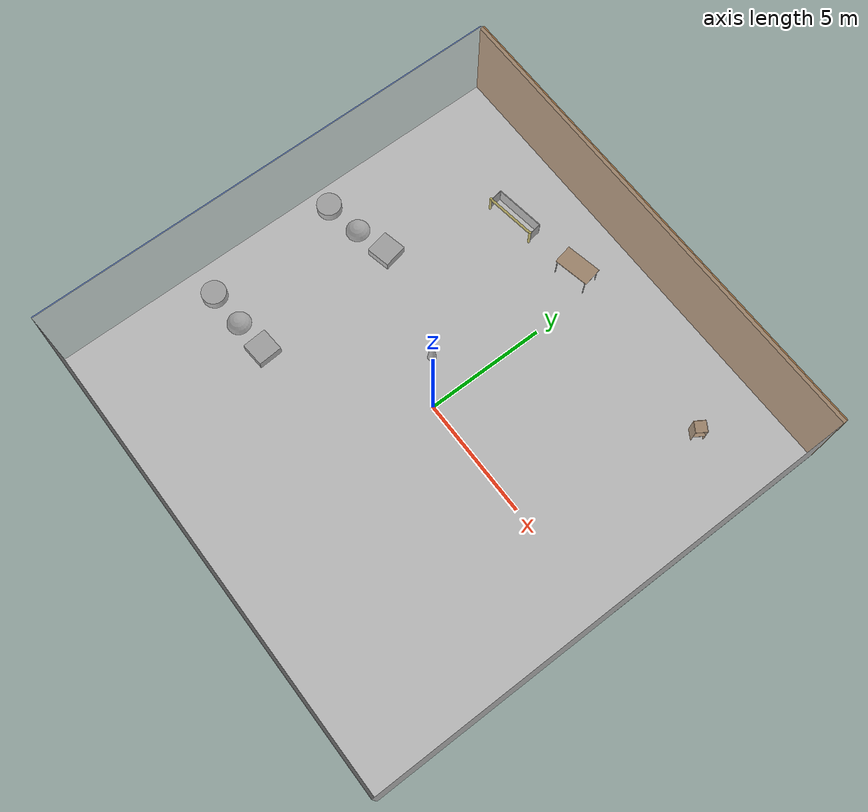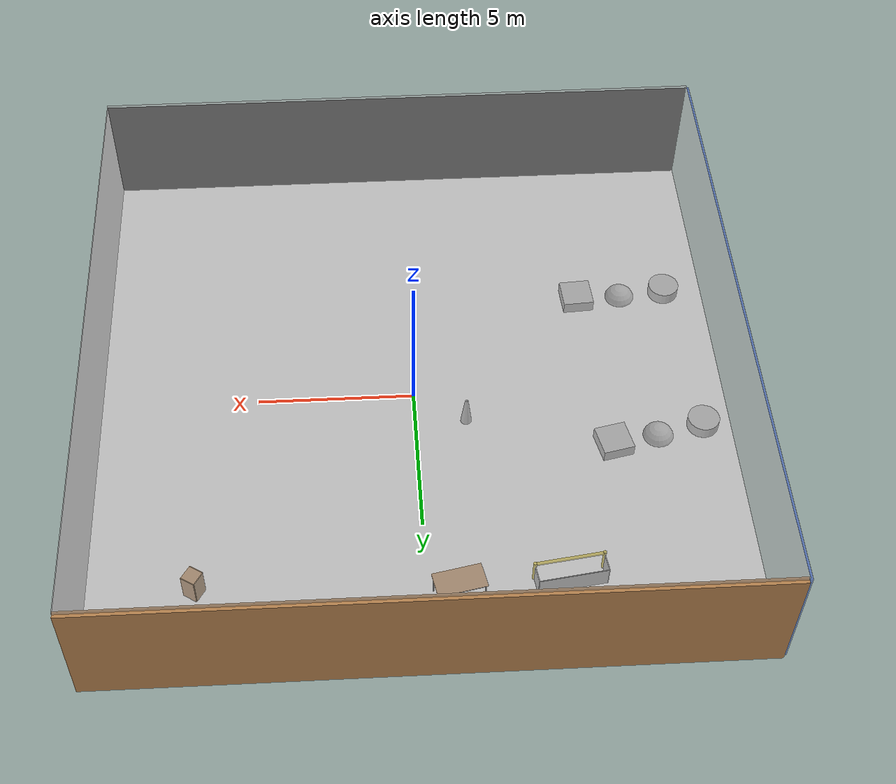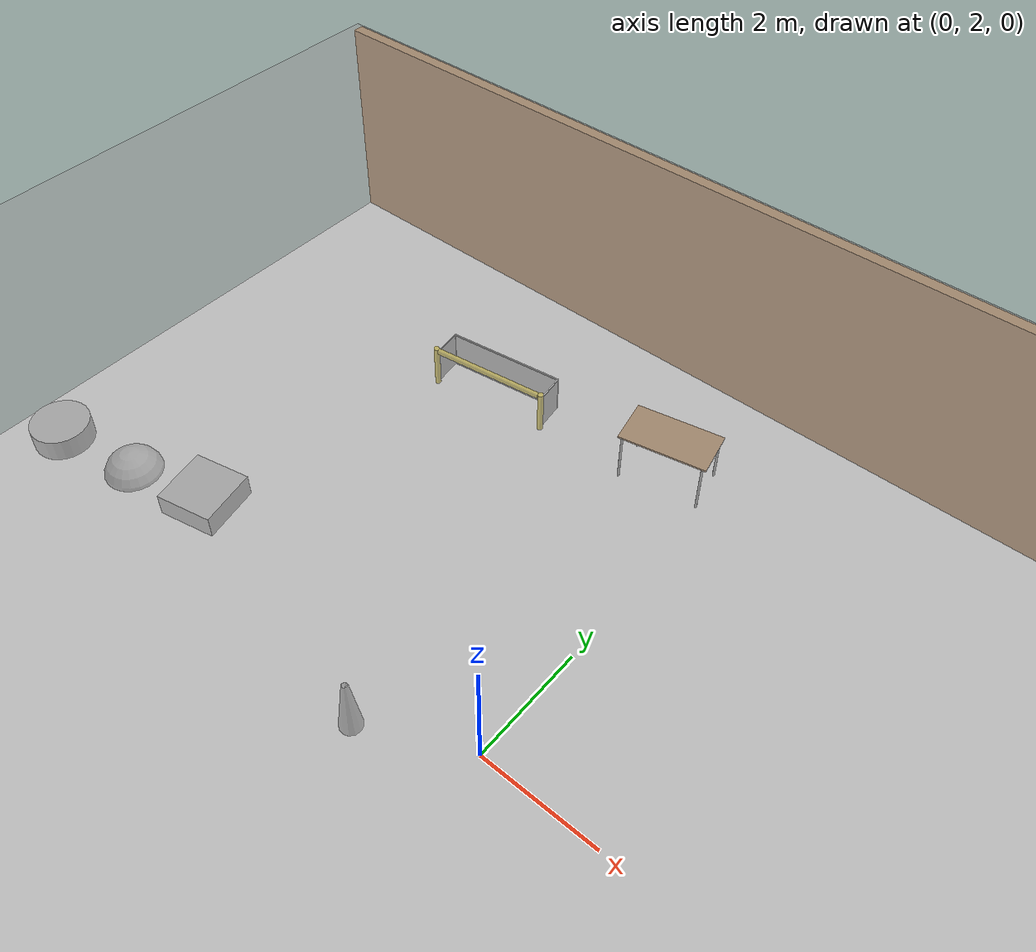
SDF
<sdf version="1.4">
 <world name="default">
  <physics type="ode">
   <max_step_size>0.001</max_step_size>
   <real_time_factor>1</real_time_factor>
   <real_time_update_rate>1000</real_time_update_rate>
   <gravity>0 0 -9.8</gravity>
  </physics>
  <scene><ambient>0.4 0.4 0.4 1</ambient><background>0.7 0.7 0.7 1</background><shadows>1</shadows></scene>
  <model name="Surrounding">
   <static>1</static>
   <link name="Ceiling">
    <collision name="Ceiling_Collision"><geometry><box><size>20 20 0.1</size></box></geometry></collision>
    <visual name="Ceiling_Visual">
     <geometry><box><size>20 20 0.1</size></box></geometry>
     <material>
      <script><uri>file://media/materials/scripts/gazebo.material</uri><name>Gazebo/GreyTransparent</name></script>
     </material>
    </visual>
    <pose>0 0 4.05 0 0 0</pose>
   </link>
   <link name="Wall_South">
    <collision name="Wall_South_Collision">
     <geometry><box><size>20 0 4</size></box></geometry>
     <pose>0 0 2 0 -0 0</pose>
    </collision>
    <visual name="Wall_South_Visual">
     <pose>0 0 2 0 -0 0</pose>
     <geometry><box><size>20 0 4</size></box></geometry>
     <material>
      <script><uri>file://media/materials/scripts/gazebo.material</uri><name>Gazebo/Black</name></script>
     </material>
    </visual>
    <velocity_decay><linear>0</linear><angular>0</angular></velocity_decay>
    <pose>0 -10 0 0 -0 0</pose>
   </link>
   <link name="Wall_East">
    <collision name="Wall_21_Collision">
     <geometry><box><size>20 0 4</size></box></geometry>
     <pose>0 0 2 0 -0 0</pose>
    </collision>
    <visual name="Wall_21_Visual">
     <pose>0 0 2 0 -0 0</pose>
     <geometry><box><size>20 0 4</size></box></geometry>
     <material>
      <script><uri>file://media/materials/scripts/gazebo.material</uri><name>Gazebo/White</name></script>
     </material>
    </visual>
    <velocity_decay><linear>0</linear><angular>0</angular></velocity_decay>
    <pose>10 0 0 0 -0 1.5708</pose>
   </link>
   <link name="Wall_North">
    <collision name="Wall_22_Collision">
     <geometry><box><size>20 0.2 4</size></box></geometry>
     <pose>0 0 2 0 -0 0</pose>
    </collision>
    <visual name="Wall_22_Visual">
     <pose>0 0 2 0 -0 0</pose>
     <geometry><box><size>20 0.2 4</size></box></geometry>
     <material>
      <script><uri>file://media/materials/scripts/gazebo.material</uri><name>Gazebo/WoodFloor</name></script>
     </material>
    </visual>
    <velocity_decay><linear>0</linear><angular>0</angular></velocity_decay>
    <pose>0 10 0 0 -0 0</pose>
   </link>
   <link name="Wall_West">
    <collision name="Wall_23_Collision">
     <geometry><box><size>20 0.2 4</size></box></geometry>
     <pose>0 0 2 0 -0 0</pose>
    </collision>
    <visual name="Wall_23_Visual">
     <pose>0 0 2 0 -0 0</pose>
     <geometry><box><size>20 0.2 4</size></box></geometry>
     <material>
      <script><uri>file://media/materials/scripts/gazebo.material</uri><name>Gazebo/BlueTransparent</name></script>
     </material>
    </visual>
    <velocity_decay><linear>0</linear><angular>0</angular></velocity_decay>
    <pose>-10 0 0 0 0 -1.5708</pose>
   </link>
   <link name="Ground_link">
    <collision name="collision">
     <pose>0 0 .05 0 -0 0</pose>
     <geometry><box><size>20 20 0.1</size></box></geometry>
    </collision>
    <visual name="visual">
     <pose>0 0 .05 0 -0 0</pose>
     <geometry><box><size>20 20 0.1</size></box></geometry>
     <material>
      <script><uri>file://media/materials/scripts/gazebo.material</uri><name>Gazebo/White</name></script>
     </material>
    </visual>
   </link>
   <static>1</static>
  </model>
  <spherical_coordinates>
   <surface_model>EARTH_WGS84</surface_model>
   <latitude_deg>0</latitude_deg>
   <longitude_deg>0</longitude_deg>
   <elevation>0</elevation>
   <heading_deg>0</heading_deg>
  </spherical_coordinates>
  <light name="lightball_0" type="diffuse">
   <diffuse>0.8 0.8 0.8 1</diffuse>
   <specular>0.2 0.2 0.2 1</specular>
   <attenuation>
    <range>100</range>
    <constant>0.7</constant>
    <linear>0.01</linear>
    <quadratic>0.001</quadratic>
   </attenuation>
   <direction>-0.5 0.1 -0.9</direction>
   <pose>3.93046916987 -3.68290920858 3.75970236813 0 0 0</pose>
  </light>
  <light name="lightball_1" type="diffuse">
   <diffuse>0.8 0.8 0.8 1</diffuse>
   <specular>0.2 0.2 0.2 1</specular>
   <attenuation>
    <range>100</range>
    <constant>0.7</constant>
    <linear>0.01</linear>
    <quadratic>0.001</quadratic>
   </attenuation>
   <direction>-0.5 0.1 -0.9</direction>
   <pose>-3.1787322189 -5.18632175499 2.11360451103 0 0 0</pose>
  </light>
  <light name="lightball_2" type="diffuse">
   <diffuse>0.8 0.8 0.8 1</diffuse>
   <specular>0.2 0.2 0.2 1</specular>
   <attenuation>
    <range>100</range>
    <constant>0.7</constant>
    <linear>0.01</linear>
    <quadratic>0.001</quadratic>
   </attenuation>
   <direction>-0.5 0.1 -0.9</direction>
   <pose>-7.37292929848 -5.41593751875 0.600889148643 0 0 0</pose>
  </light>
  <light name="lightball_3" type="diffuse">
   <diffuse>0.8 0.8 0.8 1</diffuse>
   <specular>0.2 0.2 0.2 1</specular>
   <attenuation>
    <range>100</range>
    <constant>0.7</constant>
    <linear>0.01</linear>
    <quadratic>0.001</quadratic>
   </attenuation>
   <direction>-0.5 0.1 -0.9</direction>
   <pose>-3.17500342149 -2.62125174447 2.76187420536 0 0 0</pose>
  </light>
  <light name="lightball_4" type="diffuse">
   <diffuse>0.8 0.8 0.8 1</diffuse>
   <specular>0.2 0.2 0.2 1</specular>
   <attenuation>
    <range>100</range>
    <constant>0.7</constant>
    <linear>0.01</linear>
    <quadratic>0.001</quadratic>
   </attenuation>
   <direction>-0.5 0.1 -0.9</direction>
   <pose>-0.207120446519 -9.71646077157 1.3941443192 0 0 0</pose>
  </light>
  <include>
   <uri>model://textured_shapes</uri>
   <pose>-7.19945276728 -3.87925889809 0 0 0 1.63594149616</pose>
  </include>
  <include>
   <uri>model://textured_shapes</uri>
   <pose>-7.63001106817 2.07827182287 0 0 0 1.78518198781</pose>
  </include>
  <include>
   <uri>model://robocup_3Dsim_goal</uri>
   <pose>-4.20173520655 6.99485318661 0 0 0 1.70679023811</pose>
  </include>
  <include>
   <uri>model://construction_cone</uri>
   <pose>-1.59912129404 1.16334822771 0 0 0 0.120781549791</pose>
  </include>
  <include><uri>model://table</uri><pose>-0.922383519469 7.65311427376 0 0 0 0.199102068388</pose></include>
  <include><uri>model://cabinet</uri><pose>6.79825672285 7.09570371292 0 0 0 2.58405533008</pose></include>
 </world>
</sdf>

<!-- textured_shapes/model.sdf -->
<sdf version="1.6">
  <model name="textured_shapes">
    <pose>0 0 0.5 0 0 0</pose>
    <link name="box">
      <pose>0 -1.5 0 0 0 0</pose>
      <collision name="collision">
        <geometry>
          <box>
            <size>1 1 1</size>
          </box>
        </geometry>
      </collision>
      <visual name="visual">
        <geometry>
          <box>
            <size>1 1 1</size>
          </box>
        </geometry>
        <material>
          <script>
            <uri>model://../model_source/models/textured_shapes/materials/scripts</uri>
            <uri>model://../model_source/models/textured_shapes/materials/textures</uri>
            <name>TexturedShape/Squares</name>
          </script>
        </material>
      </visual>
    </link>
    <link name="sphere">
      <collision name="collision">
        <geometry>
          <sphere>
            <radius>0.5</radius>
          </sphere>
        </geometry>
      </collision>
      <visual name="visual">
        <geometry>
          <sphere>
            <radius>0.5</radius>
          </sphere>
        </geometry>
        <material>
          <script>
            <uri>model://../model_source/models/textured_shapes/materials/scripts</uri>
            <uri>model://../model_source/models/textured_shapes/materials/textures</uri>
            <name>TexturedShape/Squares</name>
          </script>
        </material>
      </visual>
    </link>
    <link name="cylinder">
      <pose>0 1.5 0 0 0 0</pose>
      <collision name="collision">
        <geometry>
          <cylinder>
            <radius>0.5</radius>
            <length>1</length>
          </cylinder>
        </geometry>
      </collision>
      <visual name="visual">
        <geometry>
          <cylinder>
            <radius>0.5</radius>
            <length>1</length>
          </cylinder>
        </geometry>
        <material>
          <script>
            <uri>model://../model_source/models/textured_shapes/materials/scripts</uri>
            <uri>model://../model_source/models/textured_shapes/materials/textures</uri>
            <name>TexturedShape/Squares</name>
          </script>
        </material>
      </visual>
    </link>
  </model>
</sdf>

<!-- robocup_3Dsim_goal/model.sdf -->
<sdf version="1.5">
  <model name="robocup_3d_goal">
    <static>true</static>
    <link name="left_post">
      <pose>0 1.05 0.45 0 0 0</pose>
      <collision name="collision">
        <geometry>
          <cylinder>
            <radius>0.05</radius>
            <length>0.9</length>
          </cylinder>
        </geometry>
      </collision>
      <visual name="visual">
        <geometry>
          <cylinder>
            <radius>0.05</radius>
            <length>0.9</length>
          </cylinder>
        </geometry>
        <material>
          <script>
            <uri>file://media/materials/scripts/gazebo.material</uri>
            <name>Gazebo/ZincYellow</name>
          </script>
        </material>
      </visual>
    </link>
    <link name="left_support_horiz_lower">
      <pose>0.30 1.05 0.01 0 0 0</pose>
      <collision name="collision">
        <geometry>
          <box>
            <size>0.50 0.02 0.02</size>
          </box>
        </geometry>
      </collision>
      <visual name="visual">
        <geometry>
          <box>
            <size>0.50 0.02 0.02</size>
          </box>
        </geometry>
        <material>
          <script>
            <uri>file://media/materials/scripts/gazebo.material</uri>
            <name>Gazebo/White</name>
          </script>
        </material>
      </visual>
    </link>
    <link name="left_support_horiz_upper">
      <pose>0.30 1.05 0.79 0 0 0</pose>
      <collision name="collision">
        <geometry>
          <box>
            <size>0.50 0.02 0.02</size>
          </box>
        </geometry>
      </collision>
      <visual name="visual">
        <geometry>
          <box>
            <size>0.50 0.02 0.02</size>
          </box>
        </geometry>
        <material>
          <script>
            <uri>file://media/materials/scripts/gazebo.material</uri>
            <name>Gazebo/White</name>
          </script>
        </material>
      </visual>
    </link>
    <link name="left_support_vertical">
      <pose>0.56 1.05 0.4 0 1.5708 0</pose>
      <collision name="collision">
        <geometry>
          <box>
            <size>0.80 0.02 0.02</size>
          </box>
        </geometry>
      </collision>
      <visual name="visual">
        <geometry>
          <box>
            <size>0.80 0.02 0.02</size>
          </box>
        </geometry>
        <material>
          <script>
            <uri>file://media/materials/scripts/gazebo.material</uri>
            <name>Gazebo/White</name>
          </script>
        </material>
      </visual>
    </link>
    <link name="right_support_horiz_lower">
      <pose>0.30 -1.05 0.01 0 0 0</pose>
      <collision name="collision">
        <geometry>
          <box>
            <size>0.50 0.02 0.02</size>
          </box>
        </geometry>
      </collision>
      <visual name="visual">
        <geometry>
          <box>
            <size>0.50 0.02 0.02</size>
          </box>
        </geometry>
        <material>
          <script>
            <uri>file://media/materials/scripts/gazebo.material</uri>
            <name>Gazebo/White</name>
          </script>
        </material>
      </visual>
    </link>
    <link name="right_support_horiz_upper">
      <pose>0.30 -1.05 0.79 0 0 0</pose>
      <collision name="collision">
        <geometry>
          <box>
            <size>0.50 0.02 0.02</size>
          </box>
        </geometry>
      </collision>
      <visual name="visual">
        <geometry>
          <box>
            <size>0.50 0.02 0.02</size>
          </box>
        </geometry>
        <material>
          <script>
            <uri>file://media/materials/scripts/gazebo.material</uri>
            <name>Gazebo/White</name>
          </script>
        </material>
      </visual>
    </link>
    <link name="right_support_vertical">
      <pose>0.56 -1.05 0.4 0 1.5708 0</pose>
      <collision name="collision">
        <geometry>
          <box>
            <size>0.80 0.02 0.02</size>
          </box>
        </geometry>
      </collision>
      <visual name="visual">
        <geometry>
          <box>
            <size>0.80 0.02 0.02</size>
          </box>
        </geometry>
        <material>
          <script>
            <uri>file://media/materials/scripts/gazebo.material</uri>
            <name>Gazebo/White</name>
          </script>
        </material>
      </visual>
    </link>
    <link name="center_support_horiz_lower">
      <pose>0.56 0 0.01 0 1.5708 0</pose>
      <collision name="collision">
        <geometry>
          <box>
            <size>0.02 2.08 0.02</size>
          </box>
        </geometry>
      </collision>
      <visual name="visual">
        <geometry>
          <box>
            <size>0.02 2.08 0.02</size>
          </box>
        </geometry>
        <material>
          <script>
            <uri>file://media/materials/scripts/gazebo.material</uri>
            <name>Gazebo/White</name>
          </script>
        </material>
      </visual>
    </link>
    <link name="center_support_horiz_upper">
      <pose>0.56 0 0.79 0 1.5708 0</pose>
      <collision name="collision">
        <geometry>
          <box>
            <size>0.02 2.08 0.02</size>
          </box>
        </geometry>
      </collision>
      <visual name="visual">
        <geometry>
          <box>
            <size>0.02 2.08 0.02</size>
          </box>
        </geometry>
        <material>
          <script>
            <uri>file://media/materials/scripts/gazebo.material</uri>
            <name>Gazebo/White</name>
          </script>
        </material>
      </visual>
    </link>
    <link name="right_post">
      <pose>0 -1.05 0.45 0 0 0</pose>
      <collision name="collision">
        <geometry>
          <cylinder>
            <radius>0.05</radius>
            <length>0.9</length>
          </cylinder>
        </geometry>
      </collision>
      <visual name="visual">
        <geometry>
          <cylinder>
            <radius>0.05</radius>
            <length>0.9</length>
          </cylinder>
        </geometry>
        <material>
          <script>
            <uri>file://media/materials/scripts/gazebo.material</uri>
            <name>Gazebo/ZincYellow</name>
          </script>
        </material>
      </visual>
    </link>
    <link name="crossbar">
      <pose>0 0 0.85 1.57 1.57 0</pose>
      <collision name="collision">
        <geometry>
          <cylinder>
            <radius>0.05</radius>
            <length>2.0</length>
          </cylinder>
        </geometry>
      </collision>
      <visual name="visual">
        <geometry>
          <cylinder>
            <radius>0.05</radius>
            <length>2.0</length>
          </cylinder>
        </geometry>
        <material>
          <script>
            <uri>file://media/materials/scripts/gazebo.material</uri>
            <name>Gazebo/ZincYellow</name>
          </script>
        </material>
      </visual>
    </link>
    <link name="center_net">
      <pose>0.56 0 0.40 0 0 0</pose>
      <collision name="collision">
        <geometry>
          <box>
            <size>0.01 2.1 0.80</size>
          </box>
        </geometry>
      </collision>
      <visual name="visual">
        <geometry>
          <box>
            <size>0.01 2.1 0.80</size>
          </box>
        </geometry>
        <material>
          <script>
            <uri>model://../model_source/models/robocup09_spl_field/materials/scripts/</uri>
            <uri>model://../model_source/models/robocup09_spl_field/materials/textures/</uri>
            <name>RoboCup/Net</name>
          </script>
        </material>
      </visual>
    </link>
    <link name="left_net">
      <pose>0.30 1.05 0.40 0 0 0</pose>
      <collision name="collision">
        <geometry>
          <box>
            <size>0.50 0.01 0.76</size>
          </box>
        </geometry>
      </collision>
      <visual name="visual">
        <geometry>
          <box>
            <size>0.50 0.01 0.76</size>
          </box>
        </geometry>
        <material>
          <script>
            <uri>model://../model_source/models/robocup09_spl_field/materials/scripts/</uri>
            <uri>model://../model_source/models/robocup09_spl_field/materials/textures/</uri>
            <name>RoboCup/Net</name>
          </script>
        </material>
      </visual>
    </link>
    <link name="right_net">
      <pose>0.30 -1.05 0.40 0 0 0</pose>
      <collision name="collision">
        <geometry>
          <box>
            <size>0.50 0.01 0.76</size>
          </box>
        </geometry>
      </collision>
      <visual name="visual">
        <geometry>
          <box>
            <size>0.50 0.01 0.76</size>
          </box>
        </geometry>
        <material>
          <script>
            <uri>model://../model_source/models/robocup09_spl_field/materials/scripts/</uri>
            <uri>model://../model_source/models/robocup09_spl_field/materials/textures/</uri>
            <name>RoboCup/Net</name>
          </script>
        </material>
      </visual>
    </link>
  </model>
</sdf>

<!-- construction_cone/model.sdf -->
<sdf version="1.5">
  <model name="Construction Cone">
    <link name="link">
      <collision name="collision">
        <geometry>
          <mesh>
            <scale>10 10 10</scale>
            <uri>file://isr-testbed/construction_cone/meshes/construction_cone.dae</uri>
          </mesh>
        </geometry>
      </collision>
      <visual name="visual">
        <geometry>
          <mesh>
            <scale>10 10 10</scale>
            <uri>file://isr-testbed/construction_cone/meshes/construction_cone.dae</uri>
          </mesh>
        </geometry>
      </visual>
    </link>
  </model>
</sdf>

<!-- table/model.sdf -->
<sdf version="1.5">
  <model name="table">
    <static>true</static>
    <link name="link">
      <collision name="surface">
        <pose>0 0 1.0 0 0 0</pose>
        <geometry>
          <box>
            <size>1.5 0.8 0.03</size>
          </box>
        </geometry>
        <surface>
          <friction>
            <ode>
              <mu>0.6</mu>
              <mu2>0.6</mu2>
            </ode>
          </friction>
        </surface>
      </collision>
      <visual name="visual1">
        <pose>0 0 1.0 0 0 0</pose>
        <geometry>
          <box>
            <size>1.5 0.8 0.03</size>
          </box>
        </geometry>
        <material>
          <script>
            <uri>model://media/materials/scripts/gazebo.material</uri>
            <name>Gazebo/Wood</name>
          </script>
        </material>
      </visual>
      <collision name="front_left_leg">
        <pose>0.68 0.38 0.5 0 0 0</pose>
        <geometry>
          <cylinder>
            <radius>0.02</radius>
            <length>1.0</length>
          </cylinder>
        </geometry>
      </collision>
      <visual name="front_left_leg">
        <pose>0.68 0.38 0.5 0 0 0</pose>
        <geometry>
          <cylinder>
            <radius>0.02</radius>
            <length>1.0</length>
          </cylinder>
        </geometry>
        <material>
          <script>
            <uri>model://media/materials/scripts/gazebo.material</uri>
            <name>Gazebo/Grey</name>
          </script>
        </material>
      </visual>
      <collision name="front_right_leg">
        <pose>0.68 -0.38 0.5 0 0 0</pose>
        <geometry>
          <cylinder>
            <radius>0.02</radius>
            <length>1.0</length>
          </cylinder>
        </geometry>
      </collision>
      <visual name="front_right_leg">
        <pose>0.68 -0.38 0.5 0 0 0</pose>
        <geometry>
          <cylinder>
            <radius>0.02</radius>
            <length>1.0</length>
          </cylinder>
        </geometry>
        <material>
          <script>
            <uri>model://media/materials/scripts/gazebo.material</uri>
            <name>Gazebo/Grey</name>
          </script>
        </material>
      </visual>
      <collision name="back_right_leg">
        <pose>-0.68 -0.38 0.5 0 0 0</pose>
        <geometry>
          <cylinder>
            <radius>0.02</radius>
            <length>1.0</length>
          </cylinder>
        </geometry>
      </collision>
      <visual name="back_right_leg">
        <pose>-0.68 -0.38 0.5 0 0 0</pose>
        <geometry>
          <cylinder>
            <radius>0.02</radius>
            <length>1.0</length>
          </cylinder>
        </geometry>
        <material>
          <script>
            <uri>model://media/materials/scripts/gazebo.material</uri>
            <name>Gazebo/Grey</name>
          </script>
        </material>
      </visual>
      <collision name="back_left_leg">
        <pose>-0.68 0.38 0.5 0 0 0</pose>
        <geometry>
          <cylinder>
            <radius>0.02</radius>
            <length>1.0</length>
          </cylinder>
        </geometry>
      </collision>
      <visual name="back_left_leg">
        <pose>-0.68 0.38 0.5 0 0 0</pose>
        <geometry>
          <cylinder>
            <radius>0.02</radius>
            <length>1.0</length>
          </cylinder>
        </geometry>
        <material>
          <script>
            <uri>model://media/materials/scripts/gazebo.material</uri>
            <name>Gazebo/Grey</name>
          </script>
        </material>
      </visual>
    </link>
  </model>
</sdf>

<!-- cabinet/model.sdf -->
<sdf version="1.5">
  <model name="cabinet">
    <static>true</static>
    <link name="cabinet_bottom_plate">
      <inertial>
        <pose>0 0 -1 0 0 0</pose>
        <inertia>
          <ixx>2.050000</ixx>
          <ixy>0</ixy>
          <ixz>0</ixz>
          <iyy>2.050000</iyy>
          <iyz>0</iyz>
          <izz>2.050000</izz>
        </inertia>
        <mass>25.000000</mass>
      </inertial>
      <collision name="cabinet_bottom_plate_geom">
        <pose>0 0 0.010000 0 0 0</pose>
        <geometry>
          <box>
            <size>0.450000 0.450000 0.020000</size>
          </box>
        </geometry>
      </collision>
      <visual name="cabinet_bottom_plate_geom_visual">
        <pose>0 0 0.010000 0 0 0</pose>
        <geometry>
          <box>
            <size>0.450000 0.450000 0.020000</size>
          </box>
        </geometry>
        <material>
          <script>
            <uri>model://media/materials/scripts/gazebo.material</uri>
            <name>Gazebo/Wood</name>
          </script>
        </material>
      </visual>
      <collision name="cabinet_bottom_plate_geom_cabinet_back_plate">
        <pose>0.235000 0 0.510000 0 0 0</pose>
        <geometry>
          <box>
            <size>0.020000 0.450000 1.020000</size>
          </box>
        </geometry>
      </collision>
      <visual name="cabinet_bottom_plate_geom_cabinet_back_plate_visual">
        <pose>0.235000 0 0.510000 0 0 0</pose>
        <geometry>
          <box>
            <size>0.020000 0.450000 1.020000</size>
          </box>
        </geometry>
        <material>
          <script>
            <uri>model://media/materials/scripts/gazebo.material</uri>
            <name>Gazebo/Wood</name>
          </script>
        </material>
      </visual>
      <collision name="cabinet_bottom_plate_geom_cabinet_left_plate">
        <pose>0 0.235000 0.510000 0 0 0</pose>
        <geometry>
          <box>
            <size>0.450000 0.020000 1.020000</size>
          </box>
        </geometry>
      </collision>
      <visual name="cabinet_bottom_plate_geom_cabinet_left_plate_visual">
        <pose>0 0.235000 0.510000 0 0 0</pose>
        <geometry>
          <box>
            <size>0.450000 0.020000 1.020000</size>
          </box>
        </geometry>
        <material>
          <script>
            <uri>model://media/materials/scripts/gazebo.material</uri>
            <name>Gazebo/Wood</name>
          </script>
        </material>
      </visual>
      <collision name="cabinet_bottom_plate_geom_cabinet_middle_plate">
        <pose>0 0 0.510000 0 0 0</pose>
        <geometry>
          <box>
            <size>0.450000 0.450000 0.020000</size>
          </box>
        </geometry>
      </collision>
      <visual name="cabinet_bottom_plate_geom_cabinet_middle_plate_visual">
        <pose>0 0 0.510000 0 0 0</pose>
        <geometry>
          <box>
            <size>0.450000 0.450000 0.020000</size>
          </box>
        </geometry>
        <material>
          <script>
            <uri>model://media/materials/scripts/gazebo.material</uri>
            <name>Gazebo/Wood</name>
          </script>
        </material>
      </visual>
      <collision name="cabinet_bottom_plate_geom_cabinet_right_plate">
        <pose>0 -0.235000 0.510000 0 0 0</pose>
        <geometry>
          <box>
            <size>0.450000 0.020000 1.020000</size>
          </box>
        </geometry>
      </collision>
      <visual name="cabinet_bottom_plate_geom_cabinet_right_plate_visual">
        <pose>0 -0.235000 0.510000 0 0 0</pose>
        <geometry>
          <box>
            <size>0.450000 0.020000 1.020000</size>
          </box>
        </geometry>
        <material>
          <script>
            <uri>model://media/materials/scripts/gazebo.material</uri>
            <name>Gazebo/Wood</name>
          </script>
        </material>
      </visual>
      <collision name="cabinet_bottom_plate_geom_cabinet_top_plate">
        <pose>0 0 1.010000 0 0 0</pose>
        <geometry>
          <box>
            <size>0.450000 0.450000 0.020000</size>
          </box>
        </geometry>
      </collision>
      <visual name="cabinet_bottom_plate_geom_cabinet_top_plate_visual">
        <pose>0 0 1.010000 0 0 0</pose>
        <geometry>
          <box>
            <size>0.450000 0.450000 0.020000</size>
          </box>
        </geometry>
        <material>
          <script>
            <uri>model://media/materials/scripts/gazebo.material</uri>
            <name>Gazebo/Wood</name>
          </script>
        </material>
      </visual>
    </link>
  </model>
</sdf>
